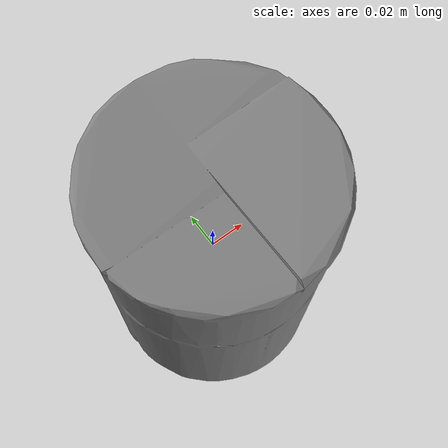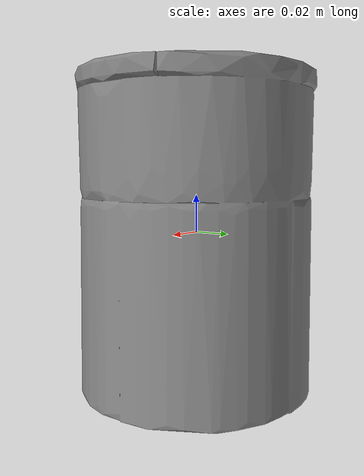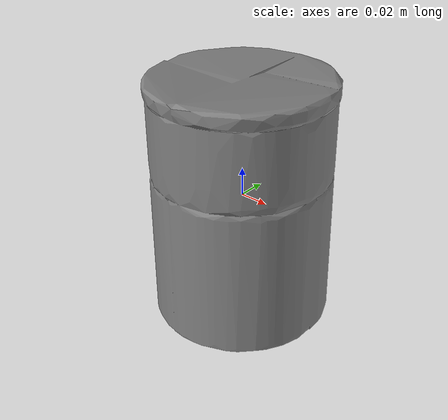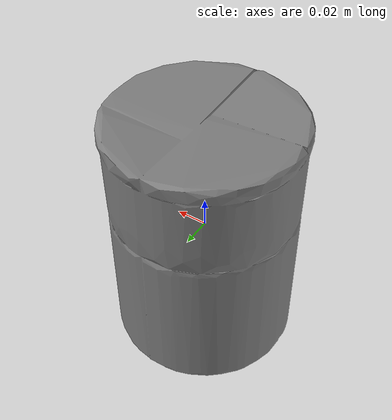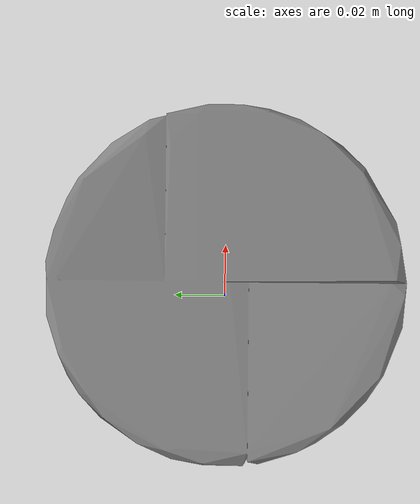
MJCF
<mujoco model="can_002_heavy_master_chef_can_M">
  <default>
    <default class="visual">
      <geom group="2" type="mesh" contype="0" conaffinity="0" />
    </default>
    <default class="collision">
      <geom group="3" type="mesh" />
    </default>
  </default>
  <asset>
    <mesh file="can_002_heavy_master_chef_can_M.stl" />
    <mesh file="can_002_heavy_master_chef_can_M_collision_0.stl" />
    <mesh file="can_002_heavy_master_chef_can_M_collision_1.stl" />
    <mesh file="can_002_heavy_master_chef_can_M_collision_2.stl" />
    <mesh file="can_002_heavy_master_chef_can_M_collision_3.stl" />
    <mesh file="can_002_heavy_master_chef_can_M_collision_4.stl" />
    <mesh file="can_002_heavy_master_chef_can_M_collision_5.stl" />
    <mesh file="can_002_heavy_master_chef_can_M_collision_6.stl" />
    <mesh file="can_002_heavy_master_chef_can_M_collision_7.stl" />
    <mesh file="can_002_heavy_master_chef_can_M_collision_8.stl" />
    <mesh file="can_002_heavy_master_chef_can_M_collision_9.stl" />
    <mesh file="can_002_heavy_master_chef_can_M_collision_10.stl" />
    <mesh file="can_002_heavy_master_chef_can_M_collision_11.stl" />
    <mesh file="can_002_heavy_master_chef_can_M_collision_12.stl" />
    <mesh file="can_002_heavy_master_chef_can_M_collision_13.stl" />
    <mesh file="can_002_heavy_master_chef_can_M_collision_14.stl" />
    <mesh file="can_002_heavy_master_chef_can_M_collision_15.stl" />
  </asset>
  <worldbody>
    <body name="can_002_heavy_master_chef_can_M">
      <geom mesh="can_002_heavy_master_chef_can_M" class="visual" />
      <geom mesh="can_002_heavy_master_chef_can_M_collision_0" class="collision" />
      <geom mesh="can_002_heavy_master_chef_can_M_collision_1" class="collision" />
      <geom mesh="can_002_heavy_master_chef_can_M_collision_2" class="collision" />
      <geom mesh="can_002_heavy_master_chef_can_M_collision_3" class="collision" />
      <geom mesh="can_002_heavy_master_chef_can_M_collision_4" class="collision" />
      <geom mesh="can_002_heavy_master_chef_can_M_collision_5" class="collision" />
      <geom mesh="can_002_heavy_master_chef_can_M_collision_6" class="collision" />
      <geom mesh="can_002_heavy_master_chef_can_M_collision_7" class="collision" />
      <geom mesh="can_002_heavy_master_chef_can_M_collision_8" class="collision" />
      <geom mesh="can_002_heavy_master_chef_can_M_collision_9" class="collision" />
      <geom mesh="can_002_heavy_master_chef_can_M_collision_10" class="collision" />
      <geom mesh="can_002_heavy_master_chef_can_M_collision_11" class="collision" />
      <geom mesh="can_002_heavy_master_chef_can_M_collision_12" class="collision" />
      <geom mesh="can_002_heavy_master_chef_can_M_collision_13" class="collision" />
      <geom mesh="can_002_heavy_master_chef_can_M_collision_14" class="collision" />
      <geom mesh="can_002_heavy_master_chef_can_M_collision_15" class="collision" />
    </body>
  </worldbody>
</mujoco>
